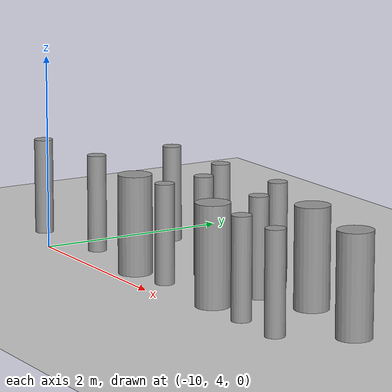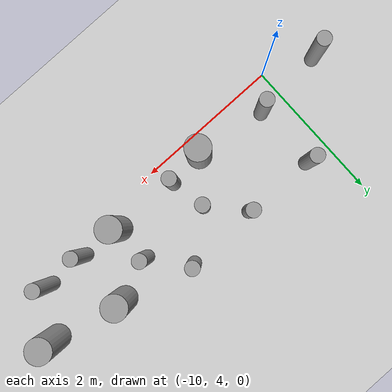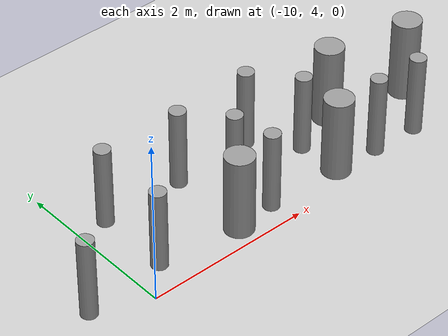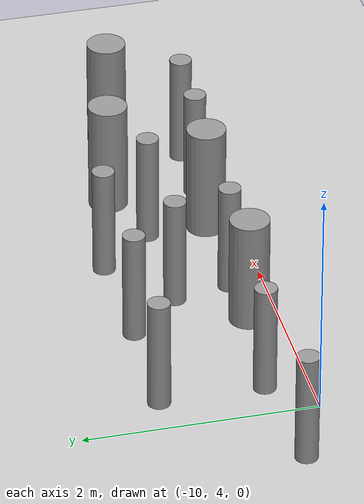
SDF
<sdf version="1.6">
 <world name="default">
  <model name="ground_plane">
   <static>1</static>
   <link name="link">
    <collision name="collision">
     <geometry><plane><normal>0 0 1</normal><size>100 100</size></plane></geometry>
     <surface><friction><ode><mu>100</mu><mu2>50</mu2></ode></friction></surface>
    </collision>
    <visual name="visual">
     <cast_shadows>0</cast_shadows>
     <geometry><plane><normal>0 0 1</normal><size>100 100</size></plane></geometry>
     <material>
      <script><uri>file://media/materials/scripts/gazebo.material</uri><name>Gazebo/Grey</name></script>
     </material>
    </visual>
   </link>
  </model>
  <model name="cyl_wall_clone_clone_3_clone_2_clone_0">
   <link name="link_0">
    <pose>-2.73893 -0.366465 0 0 -0 0</pose>
    <inertial>
     <mass>0.0374993</mass>
     <inertia>
      <ixx>0.00321281</ixx>
      <ixy>0</ixy>
      <ixz>0</ixz>
      <iyy>0.00321281</iyy>
      <iyz>0</iyz>
      <izz>0.000175774</izz>
     </inertia>
    </inertial>
    <visual name="visual">
     <geometry><cylinder><radius>0.0968661</radius><length>1</length></cylinder></geometry>
     <material>
      <lighting>1</lighting>
      <script><uri>file://media/materials/scripts/gazebo.material</uri><name>Gazebo/Grey</name></script>
      <ambient>0.3 0.3 0.3 1</ambient>
      <diffuse>0.7 0.7 0.7 1</diffuse>
      <specular>0.01 0.01 0.01 1</specular>
      <emissive>0 0 0 1</emissive>
     </material>
    </visual>
    <collision name="collision">
     <geometry><cylinder><radius>0.096866</radius><length>1</length></cylinder></geometry>
     <surface>
      <friction>
       <ode><mu>1</mu><mu2>1</mu2><fdir1>0 0 0</fdir1><slip1>0</slip1><slip2>0</slip2></ode>
       <torsional>
        <coefficient>1</coefficient>
        <patch_radius>0</patch_radius>
        <surface_radius>0</surface_radius>
        <use_patch_radius>1</use_patch_radius>
        <ode><slip>0</slip></ode>
       </torsional>
      </friction>
      <bounce><restitution_coefficient>0</restitution_coefficient><threshold>1e+06</threshold></bounce>
      <contact>
       <collide_without_contact>0</collide_without_contact>
       <collide_without_contact_bitmask>1</collide_without_contact_bitmask>
       <collide_bitmask>1</collide_bitmask>
       <ode>
        <soft_cfm>0</soft_cfm>
        <soft_erp>0.2</soft_erp>
        <kp>1e+13</kp>
        <kd>1</kd>
        <max_vel>0.01</max_vel>
        <min_depth>0</min_depth>
       </ode>
       <bullet>
        <split_impulse>1</split_impulse>
        <split_impulse_penetration_threshold>-0.01</split_impulse_penetration_threshold>
        <soft_cfm>0</soft_cfm>
        <soft_erp>0.2</soft_erp>
        <kp>1e+13</kp>
        <kd>1</kd>
       </bullet>
      </contact>
     </surface>
    </collision>
   </link>
   <link name="link_0_clone">
    <pose>-1.73893 0.61877 0 0 -0 0</pose>
    <inertial>
     <mass>0.0374993</mass>
     <inertia>
      <ixx>0.00321281</ixx>
      <ixy>0</ixy>
      <ixz>0</ixz>
      <iyy>0.00321281</iyy>
      <iyz>0</iyz>
      <izz>0.000175774</izz>
     </inertia>
    </inertial>
    <visual name="visual">
     <geometry><cylinder><radius>0.0968661</radius><length>1</length></cylinder></geometry>
     <material>
      <lighting>1</lighting>
      <script><uri>file://media/materials/scripts/gazebo.material</uri><name>Gazebo/Grey</name></script>
      <ambient>0.3 0.3 0.3 1</ambient>
      <diffuse>0.7 0.7 0.7 1</diffuse>
      <specular>0.01 0.01 0.01 1</specular>
      <emissive>0 0 0 1</emissive>
      <shader type="pixel"/>
     </material>
    </visual>
    <collision name="collision">
     <geometry><cylinder><radius>0.096866</radius><length>1</length></cylinder></geometry>
     <surface>
      <friction>
       <ode><mu>1</mu><mu2>1</mu2><fdir1>0 0 0</fdir1><slip1>0</slip1><slip2>0</slip2></ode>
       <torsional>
        <coefficient>1</coefficient>
        <patch_radius>0</patch_radius>
        <surface_radius>0</surface_radius>
        <use_patch_radius>1</use_patch_radius>
        <ode><slip>0</slip></ode>
       </torsional>
      </friction>
      <bounce><restitution_coefficient>0</restitution_coefficient><threshold>1e+06</threshold></bounce>
      <contact>
       <collide_without_contact>0</collide_without_contact>
       <collide_without_contact_bitmask>1</collide_without_contact_bitmask>
       <collide_bitmask>1</collide_bitmask>
       <ode>
        <soft_cfm>0</soft_cfm>
        <soft_erp>0.2</soft_erp>
        <kp>1e+13</kp>
        <kd>1</kd>
        <max_vel>0.01</max_vel>
        <min_depth>0</min_depth>
       </ode>
       <bullet>
        <split_impulse>1</split_impulse>
        <split_impulse_penetration_threshold>-0.01</split_impulse_penetration_threshold>
        <soft_cfm>0</soft_cfm>
        <soft_erp>0.2</soft_erp>
        <kp>1e+13</kp>
        <kd>1</kd>
       </bullet>
      </contact>
     </surface>
    </collision>
   </link>
   <link name="link_0_clone_clone">
    <pose>-0.327073 0.143919 0 0 -0 0</pose>
    <inertial>
     <mass>0.0374993</mass>
     <inertia>
      <ixx>0.00321281</ixx>
      <ixy>0</ixy>
      <ixz>0</ixz>
      <iyy>0.00321281</iyy>
      <iyz>0</iyz>
      <izz>0.000175774</izz>
     </inertia>
    </inertial>
    <visual name="visual">
     <geometry><cylinder><radius>0.0968661</radius><length>1</length></cylinder></geometry>
     <material>
      <lighting>1</lighting>
      <script><uri>file://media/materials/scripts/gazebo.material</uri><name>Gazebo/Grey</name></script>
      <ambient>0.3 0.3 0.3 1</ambient>
      <diffuse>0.7 0.7 0.7 1</diffuse>
      <specular>0.01 0.01 0.01 1</specular>
      <emissive>0 0 0 1</emissive>
      <shader type="pixel"/>
     </material>
    </visual>
    <collision name="collision">
     <geometry><cylinder><radius>0.096866</radius><length>1</length></cylinder></geometry>
     <surface>
      <friction>
       <ode><mu>1</mu><mu2>1</mu2><fdir1>0 0 0</fdir1><slip1>0</slip1><slip2>0</slip2></ode>
       <torsional>
        <coefficient>1</coefficient>
        <patch_radius>0</patch_radius>
        <surface_radius>0</surface_radius>
        <use_patch_radius>1</use_patch_radius>
        <ode><slip>0</slip></ode>
       </torsional>
      </friction>
      <bounce><restitution_coefficient>0</restitution_coefficient><threshold>1e+06</threshold></bounce>
      <contact>
       <collide_without_contact>0</collide_without_contact>
       <collide_without_contact_bitmask>1</collide_without_contact_bitmask>
       <collide_bitmask>1</collide_bitmask>
       <ode>
        <soft_cfm>0</soft_cfm>
        <soft_erp>0.2</soft_erp>
        <kp>1e+13</kp>
        <kd>1</kd>
        <max_vel>0.01</max_vel>
        <min_depth>0</min_depth>
       </ode>
       <bullet>
        <split_impulse>1</split_impulse>
        <split_impulse_penetration_threshold>-0.01</split_impulse_penetration_threshold>
        <soft_cfm>0</soft_cfm>
        <soft_erp>0.2</soft_erp>
        <kp>1e+13</kp>
        <kd>1</kd>
       </bullet>
      </contact>
     </surface>
    </collision>
   </link>
   <link name="link_0_clone_clone_0">
    <pose>1.26107 -0.419359 0 0 -0 0</pose>
    <inertial>
     <mass>0.0374993</mass>
     <inertia>
      <ixx>0.00321281</ixx>
      <ixy>0</ixy>
      <ixz>0</ixz>
      <iyy>0.00321281</iyy>
      <iyz>0</iyz>
      <izz>0.000175774</izz>
     </inertia>
    </inertial>
    <visual name="visual">
     <geometry><cylinder><radius>0.0968661</radius><length>1</length></cylinder></geometry>
     <material>
      <lighting>1</lighting>
      <script><uri>file://media/materials/scripts/gazebo.material</uri><name>Gazebo/Grey</name></script>
      <ambient>0.3 0.3 0.3 1</ambient>
      <diffuse>0.7 0.7 0.7 1</diffuse>
      <specular>0.01 0.01 0.01 1</specular>
      <emissive>0 0 0 1</emissive>
      <shader type="pixel"/>
     </material>
    </visual>
    <collision name="collision">
     <geometry><cylinder><radius>0.096866</radius><length>1</length></cylinder></geometry>
     <surface>
      <friction>
       <ode><mu>1</mu><mu2>1</mu2><fdir1>0 0 0</fdir1><slip1>0</slip1><slip2>0</slip2></ode>
       <torsional>
        <coefficient>1</coefficient>
        <patch_radius>0</patch_radius>
        <surface_radius>0</surface_radius>
        <use_patch_radius>1</use_patch_radius>
        <ode><slip>0</slip></ode>
       </torsional>
      </friction>
      <bounce><restitution_coefficient>0</restitution_coefficient><threshold>1e+06</threshold></bounce>
      <contact>
       <collide_without_contact>0</collide_without_contact>
       <collide_without_contact_bitmask>1</collide_without_contact_bitmask>
       <collide_bitmask>1</collide_bitmask>
       <ode>
        <soft_cfm>0</soft_cfm>
        <soft_erp>0.2</soft_erp>
        <kp>1e+13</kp>
        <kd>1</kd>
        <max_vel>0.01</max_vel>
        <min_depth>0</min_depth>
       </ode>
       <bullet>
        <split_impulse>1</split_impulse>
        <split_impulse_penetration_threshold>-0.01</split_impulse_penetration_threshold>
        <soft_cfm>0</soft_cfm>
        <soft_erp>0.2</soft_erp>
        <kp>1e+13</kp>
        <kd>1</kd>
       </bullet>
      </contact>
     </surface>
    </collision>
   </link>
   <link name="link_0_clone_clone_1">
    <pose>-1.73893 -0.277168 0 0 -0 0</pose>
    <inertial>
     <mass>0.0374993</mass>
     <inertia>
      <ixx>0.00321281</ixx>
      <ixy>0</ixy>
      <ixz>0</ixz>
      <iyy>0.00321281</iyy>
      <iyz>0</iyz>
      <izz>0.000175774</izz>
     </inertia>
    </inertial>
    <visual name="visual">
     <geometry><cylinder><radius>0.0968661</radius><length>1</length></cylinder></geometry>
     <material>
      <lighting>1</lighting>
      <script><uri>file://media/materials/scripts/gazebo.material</uri><name>Gazebo/Grey</name></script>
      <ambient>0.3 0.3 0.3 1</ambient>
      <diffuse>0.7 0.7 0.7 1</diffuse>
      <specular>0.01 0.01 0.01 1</specular>
      <emissive>0 0 0 1</emissive>
      <shader type="pixel"/>
     </material>
    </visual>
    <collision name="collision">
     <geometry><cylinder><radius>0.096866</radius><length>1</length></cylinder></geometry>
     <surface>
      <friction>
       <ode><mu>1</mu><mu2>1</mu2><fdir1>0 0 0</fdir1><slip1>0</slip1><slip2>0</slip2></ode>
       <torsional>
        <coefficient>1</coefficient>
        <patch_radius>0</patch_radius>
        <surface_radius>0</surface_radius>
        <use_patch_radius>1</use_patch_radius>
        <ode><slip>0</slip></ode>
       </torsional>
      </friction>
      <bounce><restitution_coefficient>0</restitution_coefficient><threshold>1e+06</threshold></bounce>
      <contact>
       <collide_without_contact>0</collide_without_contact>
       <collide_without_contact_bitmask>1</collide_without_contact_bitmask>
       <collide_bitmask>1</collide_bitmask>
       <ode>
        <soft_cfm>0</soft_cfm>
        <soft_erp>0.2</soft_erp>
        <kp>1e+13</kp>
        <kd>1</kd>
        <max_vel>0.01</max_vel>
        <min_depth>0</min_depth>
       </ode>
       <bullet>
        <split_impulse>1</split_impulse>
        <split_impulse_penetration_threshold>-0.01</split_impulse_penetration_threshold>
        <soft_cfm>0</soft_cfm>
        <soft_erp>0.2</soft_erp>
        <kp>1e+13</kp>
        <kd>1</kd>
       </bullet>
      </contact>
     </surface>
    </collision>
   </link>
   <link name="link_0_clone_clone_2">
    <pose>-0.738934 0.593961 0 0 -0 0</pose>
    <inertial>
     <mass>0.0374993</mass>
     <inertia>
      <ixx>0.00321281</ixx>
      <ixy>0</ixy>
      <ixz>0</ixz>
      <iyy>0.00321281</iyy>
      <iyz>0</iyz>
      <izz>0.000175774</izz>
     </inertia>
    </inertial>
    <visual name="visual">
     <geometry><cylinder><radius>0.0968661</radius><length>1</length></cylinder></geometry>
     <material>
      <lighting>1</lighting>
      <script><uri>file://media/materials/scripts/gazebo.material</uri><name>Gazebo/Grey</name></script>
      <ambient>0.3 0.3 0.3 1</ambient>
      <diffuse>0.7 0.7 0.7 1</diffuse>
      <specular>0.01 0.01 0.01 1</specular>
      <emissive>0 0 0 1</emissive>
      <shader type="pixel"/>
     </material>
    </visual>
    <collision name="collision">
     <geometry><cylinder><radius>0.096866</radius><length>1</length></cylinder></geometry>
     <surface>
      <friction>
       <ode><mu>1</mu><mu2>1</mu2><fdir1>0 0 0</fdir1><slip1>0</slip1><slip2>0</slip2></ode>
       <torsional>
        <coefficient>1</coefficient>
        <patch_radius>0</patch_radius>
        <surface_radius>0</surface_radius>
        <use_patch_radius>1</use_patch_radius>
        <ode><slip>0</slip></ode>
       </torsional>
      </friction>
      <bounce><restitution_coefficient>0</restitution_coefficient><threshold>1e+06</threshold></bounce>
      <contact>
       <collide_without_contact>0</collide_without_contact>
       <collide_without_contact_bitmask>1</collide_without_contact_bitmask>
       <collide_bitmask>1</collide_bitmask>
       <ode>
        <soft_cfm>0</soft_cfm>
        <soft_erp>0.2</soft_erp>
        <kp>1e+13</kp>
        <kd>1</kd>
        <max_vel>0.01</max_vel>
        <min_depth>0</min_depth>
       </ode>
       <bullet>
        <split_impulse>1</split_impulse>
        <split_impulse_penetration_threshold>-0.01</split_impulse_penetration_threshold>
        <soft_cfm>0</soft_cfm>
        <soft_erp>0.2</soft_erp>
        <kp>1e+13</kp>
        <kd>1</kd>
       </bullet>
      </contact>
     </surface>
    </collision>
   </link>
   <link name="link_0_clone_clone_3">
    <pose>0.261066 0.624849 0 0 -0 0</pose>
    <inertial>
     <mass>0.0374993</mass>
     <inertia>
      <ixx>0.00321281</ixx>
      <ixy>0</ixy>
      <ixz>0</ixz>
      <iyy>0.00321281</iyy>
      <iyz>0</iyz>
      <izz>0.000175774</izz>
     </inertia>
    </inertial>
    <visual name="visual">
     <geometry><cylinder><radius>0.0968661</radius><length>1</length></cylinder></geometry>
     <material>
      <lighting>1</lighting>
      <script><uri>file://media/materials/scripts/gazebo.material</uri><name>Gazebo/Grey</name></script>
      <ambient>0.3 0.3 0.3 1</ambient>
      <diffuse>0.7 0.7 0.7 1</diffuse>
      <specular>0.01 0.01 0.01 1</specular>
      <emissive>0 0 0 1</emissive>
      <shader type="pixel"/>
     </material>
    </visual>
    <collision name="collision">
     <geometry><cylinder><radius>0.096866</radius><length>1</length></cylinder></geometry>
     <surface>
      <friction>
       <ode><mu>1</mu><mu2>1</mu2><fdir1>0 0 0</fdir1><slip1>0</slip1><slip2>0</slip2></ode>
       <torsional>
        <coefficient>1</coefficient>
        <patch_radius>0</patch_radius>
        <surface_radius>0</surface_radius>
        <use_patch_radius>1</use_patch_radius>
        <ode><slip>0</slip></ode>
       </torsional>
      </friction>
      <bounce><restitution_coefficient>0</restitution_coefficient><threshold>1e+06</threshold></bounce>
      <contact>
       <collide_without_contact>0</collide_without_contact>
       <collide_without_contact_bitmask>1</collide_without_contact_bitmask>
       <collide_bitmask>1</collide_bitmask>
       <ode>
        <soft_cfm>0</soft_cfm>
        <soft_erp>0.2</soft_erp>
        <kp>1e+13</kp>
        <kd>1</kd>
        <max_vel>0.01</max_vel>
        <min_depth>0</min_depth>
       </ode>
       <bullet>
        <split_impulse>1</split_impulse>
        <split_impulse_penetration_threshold>-0.01</split_impulse_penetration_threshold>
        <soft_cfm>0</soft_cfm>
        <soft_erp>0.2</soft_erp>
        <kp>1e+13</kp>
        <kd>1</kd>
       </bullet>
      </contact>
     </surface>
    </collision>
   </link>
   <link name="link_0_clone_clone_4">
    <pose>-0.239049 -0.353105 0 0 -0 0</pose>
    <inertial>
     <mass>0.0374993</mass>
     <inertia>
      <ixx>0.00321281</ixx>
      <ixy>0</ixy>
      <ixz>0</ixz>
      <iyy>0.00321281</iyy>
      <iyz>0</iyz>
      <izz>0.000175774</izz>
     </inertia>
    </inertial>
    <visual name="visual">
     <geometry><cylinder><radius>0.0968661</radius><length>1</length></cylinder></geometry>
     <material>
      <lighting>1</lighting>
      <script><uri>file://media/materials/scripts/gazebo.material</uri><name>Gazebo/Grey</name></script>
      <ambient>0.3 0.3 0.3 1</ambient>
      <diffuse>0.7 0.7 0.7 1</diffuse>
      <specular>0.01 0.01 0.01 1</specular>
      <emissive>0 0 0 1</emissive>
      <shader type="pixel"/>
     </material>
    </visual>
    <collision name="collision">
     <geometry><cylinder><radius>0.096866</radius><length>1</length></cylinder></geometry>
     <surface>
      <friction>
       <ode><mu>1</mu><mu2>1</mu2><fdir1>0 0 0</fdir1><slip1>0</slip1><slip2>0</slip2></ode>
       <torsional>
        <coefficient>1</coefficient>
        <patch_radius>0</patch_radius>
        <surface_radius>0</surface_radius>
        <use_patch_radius>1</use_patch_radius>
        <ode><slip>0</slip></ode>
       </torsional>
      </friction>
      <bounce><restitution_coefficient>0</restitution_coefficient><threshold>1e+06</threshold></bounce>
      <contact>
       <collide_without_contact>0</collide_without_contact>
       <collide_without_contact_bitmask>1</collide_without_contact_bitmask>
       <collide_bitmask>1</collide_bitmask>
       <ode>
        <soft_cfm>0</soft_cfm>
        <soft_erp>0.2</soft_erp>
        <kp>1e+13</kp>
        <kd>1</kd>
        <max_vel>0.01</max_vel>
        <min_depth>0</min_depth>
       </ode>
       <bullet>
        <split_impulse>1</split_impulse>
        <split_impulse_penetration_threshold>-0.01</split_impulse_penetration_threshold>
        <soft_cfm>0</soft_cfm>
        <soft_erp>0.2</soft_erp>
        <kp>1e+13</kp>
        <kd>1</kd>
       </bullet>
      </contact>
     </surface>
    </collision>
   </link>
   <link name="link_0_clone_clone_5">
    <pose>0.672792 0.143919 0 0 -0 0</pose>
    <inertial>
     <mass>0.0374993</mass>
     <inertia>
      <ixx>0.00321281</ixx>
      <ixy>0</ixy>
      <ixz>0</ixz>
      <iyy>0.00321281</iyy>
      <iyz>0</iyz>
      <izz>0.000175774</izz>
     </inertia>
    </inertial>
    <visual name="visual">
     <geometry><cylinder><radius>0.0968661</radius><length>1</length></cylinder></geometry>
     <material>
      <lighting>1</lighting>
      <script><uri>file://media/materials/scripts/gazebo.material</uri><name>Gazebo/Grey</name></script>
      <ambient>0.3 0.3 0.3 1</ambient>
      <diffuse>0.7 0.7 0.7 1</diffuse>
      <specular>0.01 0.01 0.01 1</specular>
      <emissive>0 0 0 1</emissive>
      <shader type="pixel"/>
     </material>
    </visual>
    <collision name="collision">
     <geometry><cylinder><radius>0.096866</radius><length>1</length></cylinder></geometry>
     <surface>
      <friction>
       <ode><mu>1</mu><mu2>1</mu2><fdir1>0 0 0</fdir1><slip1>0</slip1><slip2>0</slip2></ode>
       <torsional>
        <coefficient>1</coefficient>
        <patch_radius>0</patch_radius>
        <surface_radius>0</surface_radius>
        <use_patch_radius>1</use_patch_radius>
        <ode><slip>0</slip></ode>
       </torsional>
      </friction>
      <bounce><restitution_coefficient>0</restitution_coefficient><threshold>1e+06</threshold></bounce>
      <contact>
       <collide_without_contact>0</collide_without_contact>
       <collide_without_contact_bitmask>1</collide_without_contact_bitmask>
       <collide_bitmask>1</collide_bitmask>
       <ode>
        <soft_cfm>0</soft_cfm>
        <soft_erp>0.2</soft_erp>
        <kp>1e+13</kp>
        <kd>1</kd>
        <max_vel>0.01</max_vel>
        <min_depth>0</min_depth>
       </ode>
       <bullet>
        <split_impulse>1</split_impulse>
        <split_impulse_penetration_threshold>-0.01</split_impulse_penetration_threshold>
        <soft_cfm>0</soft_cfm>
        <soft_erp>0.2</soft_erp>
        <kp>1e+13</kp>
        <kd>1</kd>
       </bullet>
      </contact>
     </surface>
    </collision>
   </link>
   <link name="link_0_clone_clone_6">
    <pose>1.84596 -0.433423 0 0 -0 0</pose>
    <inertial>
     <mass>0.0374993</mass>
     <inertia>
      <ixx>0.00321281</ixx>
      <ixy>0</ixy>
      <ixz>0</ixz>
      <iyy>0.00321281</iyy>
      <iyz>0</iyz>
      <izz>0.000175774</izz>
     </inertia>
    </inertial>
    <visual name="visual">
     <geometry><cylinder><radius>0.0968661</radius><length>1</length></cylinder></geometry>
     <material>
      <lighting>1</lighting>
      <script><uri>file://media/materials/scripts/gazebo.material</uri><name>Gazebo/Grey</name></script>
      <ambient>0.3 0.3 0.3 1</ambient>
      <diffuse>0.7 0.7 0.7 1</diffuse>
      <specular>0.01 0.01 0.01 1</specular>
      <emissive>0 0 0 1</emissive>
      <shader type="pixel"/>
     </material>
    </visual>
    <collision name="collision">
     <geometry><cylinder><radius>0.096866</radius><length>1</length></cylinder></geometry>
     <surface>
      <friction>
       <ode><mu>1</mu><mu2>1</mu2><fdir1>0 0 0</fdir1><slip1>0</slip1><slip2>0</slip2></ode>
       <torsional>
        <coefficient>1</coefficient>
        <patch_radius>0</patch_radius>
        <surface_radius>0</surface_radius>
        <use_patch_radius>1</use_patch_radius>
        <ode><slip>0</slip></ode>
       </torsional>
      </friction>
      <bounce><restitution_coefficient>0</restitution_coefficient><threshold>1e+06</threshold></bounce>
      <contact>
       <collide_without_contact>0</collide_without_contact>
       <collide_without_contact_bitmask>1</collide_without_contact_bitmask>
       <collide_bitmask>1</collide_bitmask>
       <ode>
        <soft_cfm>0</soft_cfm>
        <soft_erp>0.2</soft_erp>
        <kp>1e+13</kp>
        <kd>1</kd>
        <max_vel>0.01</max_vel>
        <min_depth>0</min_depth>
       </ode>
       <bullet>
        <split_impulse>1</split_impulse>
        <split_impulse_penetration_threshold>-0.01</split_impulse_penetration_threshold>
        <soft_cfm>0</soft_cfm>
        <soft_erp>0.2</soft_erp>
        <kp>1e+13</kp>
        <kd>1</kd>
       </bullet>
      </contact>
     </surface>
    </collision>
   </link>
   <link name="link_1">
    <pose>-0.738934 -0.397931 0 0 -0 0</pose>
    <inertial>
     <mass>0.117398</mass>
     <inertia>
      <ixx>0.0106445</ixx>
      <ixy>0</ixy>
      <ixz>0</ixz>
      <iyy>0.0106445</iyy>
      <iyz>0</iyz>
      <izz>0.00172278</izz>
     </inertia>
    </inertial>
    <visual name="visual">
     <geometry><cylinder><radius>0.171317</radius><length>1</length></cylinder></geometry>
     <material>
      <lighting>1</lighting>
      <script><uri>file://media/materials/scripts/gazebo.material</uri><name>Gazebo/Grey</name></script>
      <ambient>0.3 0.3 0.3 1</ambient>
      <diffuse>0.7 0.7 0.7 1</diffuse>
      <specular>0.01 0.01 0.01 1</specular>
      <emissive>0 0 0 1</emissive>
     </material>
    </visual>
    <collision name="collision">
     <geometry><cylinder><radius>0.171317</radius><length>1</length></cylinder></geometry>
     <surface>
      <friction>
       <ode><mu>1</mu><mu2>1</mu2><fdir1>0 0 0</fdir1><slip1>0</slip1><slip2>0</slip2></ode>
       <torsional>
        <coefficient>1</coefficient>
        <patch_radius>0</patch_radius>
        <surface_radius>0</surface_radius>
        <use_patch_radius>1</use_patch_radius>
        <ode><slip>0</slip></ode>
       </torsional>
      </friction>
      <bounce><restitution_coefficient>0</restitution_coefficient><threshold>1e+06</threshold></bounce>
      <contact>
       <collide_without_contact>0</collide_without_contact>
       <collide_without_contact_bitmask>1</collide_without_contact_bitmask>
       <collide_bitmask>1</collide_bitmask>
       <ode>
        <soft_cfm>0</soft_cfm>
        <soft_erp>0.2</soft_erp>
        <kp>1e+13</kp>
        <kd>1</kd>
        <max_vel>0.01</max_vel>
        <min_depth>0</min_depth>
       </ode>
       <bullet>
        <split_impulse>1</split_impulse>
        <split_impulse_penetration_threshold>-0.01</split_impulse_penetration_threshold>
        <soft_cfm>0</soft_cfm>
        <soft_erp>0.2</soft_erp>
        <kp>1e+13</kp>
        <kd>1</kd>
       </bullet>
      </contact>
     </surface>
    </collision>
   </link>
   <link name="link_1_clone">
    <pose>0.697784 -0.380861 0 0 -0 0</pose>
    <inertial>
     <mass>0.117398</mass>
     <inertia>
      <ixx>0.0106445</ixx>
      <ixy>0</ixy>
      <ixz>0</ixz>
      <iyy>0.0106445</iyy>
      <iyz>0</iyz>
      <izz>0.00172278</izz>
     </inertia>
    </inertial>
    <visual name="visual">
     <geometry><cylinder><radius>0.171317</radius><length>1</length></cylinder></geometry>
     <material>
      <lighting>1</lighting>
      <script><uri>file://media/materials/scripts/gazebo.material</uri><name>Gazebo/Grey</name></script>
      <ambient>0.3 0.3 0.3 1</ambient>
      <diffuse>0.7 0.7 0.7 1</diffuse>
      <specular>0.01 0.01 0.01 1</specular>
      <emissive>0 0 0 1</emissive>
      <shader type="pixel"/>
     </material>
    </visual>
    <collision name="collision">
     <geometry><cylinder><radius>0.171317</radius><length>1</length></cylinder></geometry>
     <surface>
      <friction>
       <ode><mu>1</mu><mu2>1</mu2><fdir1>0 0 0</fdir1><slip1>0</slip1><slip2>0</slip2></ode>
       <torsional>
        <coefficient>1</coefficient>
        <patch_radius>0</patch_radius>
        <surface_radius>0</surface_radius>
        <use_patch_radius>1</use_patch_radius>
        <ode><slip>0</slip></ode>
       </torsional>
      </friction>
      <bounce><restitution_coefficient>0</restitution_coefficient><threshold>1e+06</threshold></bounce>
      <contact>
       <collide_without_contact>0</collide_without_contact>
       <collide_without_contact_bitmask>1</collide_without_contact_bitmask>
       <collide_bitmask>1</collide_bitmask>
       <ode>
        <soft_cfm>0</soft_cfm>
        <soft_erp>0.2</soft_erp>
        <kp>1e+13</kp>
        <kd>1</kd>
        <max_vel>0.01</max_vel>
        <min_depth>0</min_depth>
       </ode>
       <bullet>
        <split_impulse>1</split_impulse>
        <split_impulse_penetration_threshold>-0.01</split_impulse_penetration_threshold>
        <soft_cfm>0</soft_cfm>
        <soft_erp>0.2</soft_erp>
        <kp>1e+13</kp>
        <kd>1</kd>
       </bullet>
      </contact>
     </surface>
    </collision>
   </link>
   <link name="link_1_clone_0">
    <pose>1.26107 0.358974 0 0 -0 0</pose>
    <inertial>
     <mass>0.117398</mass>
     <inertia>
      <ixx>0.0106445</ixx>
      <ixy>0</ixy>
      <ixz>0</ixz>
      <iyy>0.0106445</iyy>
      <iyz>0</iyz>
      <izz>0.00172278</izz>
     </inertia>
    </inertial>
    <visual name="visual">
     <geometry><cylinder><radius>0.171317</radius><length>1</length></cylinder></geometry>
     <material>
      <lighting>1</lighting>
      <script><uri>file://media/materials/scripts/gazebo.material</uri><name>Gazebo/Grey</name></script>
      <ambient>0.3 0.3 0.3 1</ambient>
      <diffuse>0.7 0.7 0.7 1</diffuse>
      <specular>0.01 0.01 0.01 1</specular>
      <emissive>0 0 0 1</emissive>
      <shader type="pixel"/>
     </material>
    </visual>
    <collision name="collision">
     <geometry><cylinder><radius>0.171317</radius><length>1</length></cylinder></geometry>
     <surface>
      <friction>
       <ode><mu>1</mu><mu2>1</mu2><fdir1>0 0 0</fdir1><slip1>0</slip1><slip2>0</slip2></ode>
       <torsional>
        <coefficient>1</coefficient>
        <patch_radius>0</patch_radius>
        <surface_radius>0</surface_radius>
        <use_patch_radius>1</use_patch_radius>
        <ode><slip>0</slip></ode>
       </torsional>
      </friction>
      <bounce><restitution_coefficient>0</restitution_coefficient><threshold>1e+06</threshold></bounce>
      <contact>
       <collide_without_contact>0</collide_without_contact>
       <collide_without_contact_bitmask>1</collide_without_contact_bitmask>
       <collide_bitmask>1</collide_bitmask>
       <ode>
        <soft_cfm>0</soft_cfm>
        <soft_erp>0.2</soft_erp>
        <kp>1e+13</kp>
        <kd>1</kd>
        <max_vel>0.01</max_vel>
        <min_depth>0</min_depth>
       </ode>
       <bullet>
        <split_impulse>1</split_impulse>
        <split_impulse_penetration_threshold>-0.01</split_impulse_penetration_threshold>
        <soft_cfm>0</soft_cfm>
        <soft_erp>0.2</soft_erp>
        <kp>1e+13</kp>
        <kd>1</kd>
       </bullet>
      </contact>
     </surface>
    </collision>
   </link>
   <link name="link_1_clone_1">
    <pose>2.26107 0.143919 0 0 -0 0</pose>
    <inertial>
     <mass>0.117398</mass>
     <inertia>
      <ixx>0.0106445</ixx>
      <ixy>0</ixy>
      <ixz>0</ixz>
      <iyy>0.0106445</iyy>
      <iyz>0</iyz>
      <izz>0.00172278</izz>
     </inertia>
    </inertial>
    <visual name="visual">
     <geometry><cylinder><radius>0.171317</radius><length>1</length></cylinder></geometry>
     <material>
      <lighting>1</lighting>
      <script><uri>file://media/materials/scripts/gazebo.material</uri><name>Gazebo/Grey</name></script>
      <ambient>0.3 0.3 0.3 1</ambient>
      <diffuse>0.7 0.7 0.7 1</diffuse>
      <specular>0.01 0.01 0.01 1</specular>
      <emissive>0 0 0 1</emissive>
      <shader type="pixel"/>
     </material>
    </visual>
    <collision name="collision">
     <geometry><cylinder><radius>0.171317</radius><length>1</length></cylinder></geometry>
     <surface>
      <friction>
       <ode><mu>1</mu><mu2>1</mu2><fdir1>0 0 0</fdir1><slip1>0</slip1><slip2>0</slip2></ode>
       <torsional>
        <coefficient>1</coefficient>
        <patch_radius>0</patch_radius>
        <surface_radius>0</surface_radius>
        <use_patch_radius>1</use_patch_radius>
        <ode><slip>0</slip></ode>
       </torsional>
      </friction>
      <bounce><restitution_coefficient>0</restitution_coefficient><threshold>1e+06</threshold></bounce>
      <contact>
       <collide_without_contact>0</collide_without_contact>
       <collide_without_contact_bitmask>1</collide_without_contact_bitmask>
       <collide_bitmask>1</collide_bitmask>
       <ode>
        <soft_cfm>0</soft_cfm>
        <soft_erp>0.2</soft_erp>
        <kp>1e+13</kp>
        <kd>1</kd>
        <max_vel>0.01</max_vel>
        <min_depth>0</min_depth>
       </ode>
       <bullet>
        <split_impulse>1</split_impulse>
        <split_impulse_penetration_threshold>-0.01</split_impulse_penetration_threshold>
        <soft_cfm>0</soft_cfm>
        <soft_erp>0.2</soft_erp>
        <kp>1e+13</kp>
        <kd>1</kd>
       </bullet>
      </contact>
     </surface>
    </collision>
   </link>
   <static>1</static>
   <pose>-7.90087 4.64971 0.5 0 -0 0</pose>
  </model>
 </world>
</sdf>
